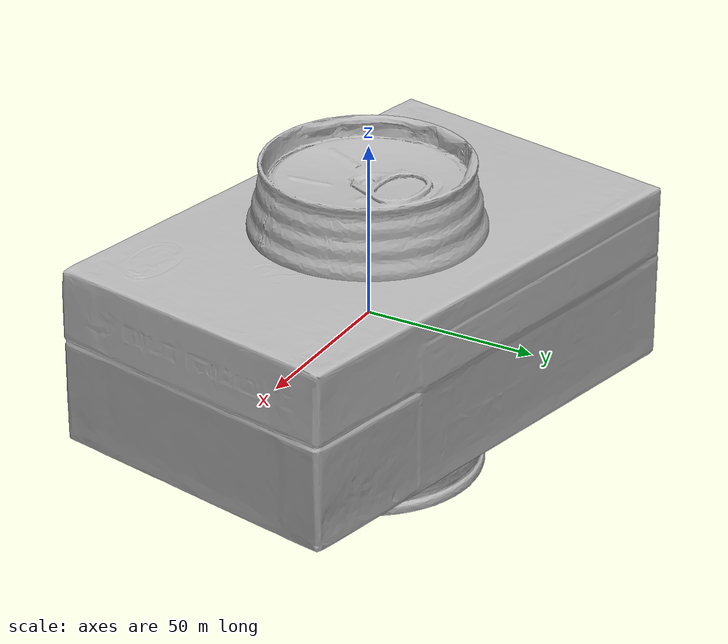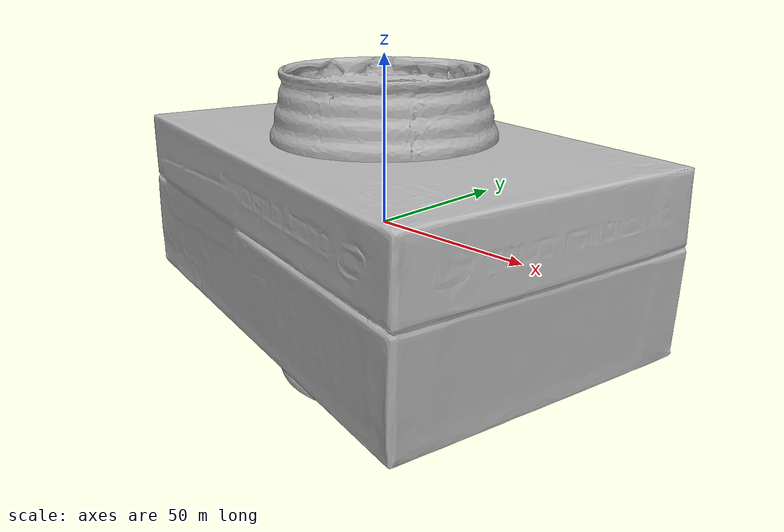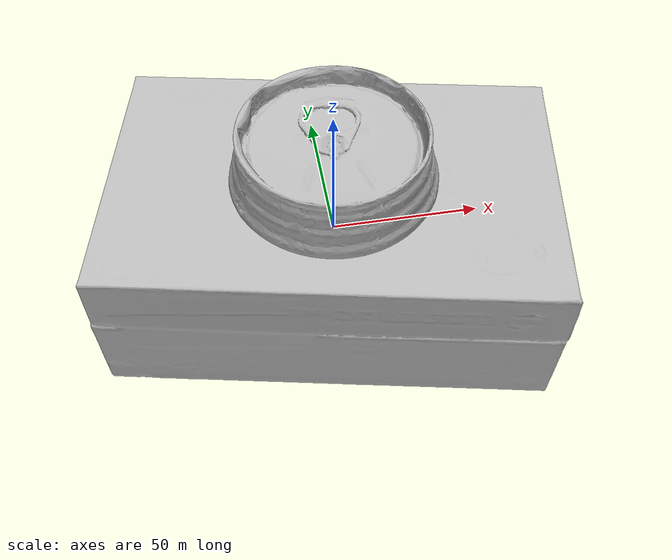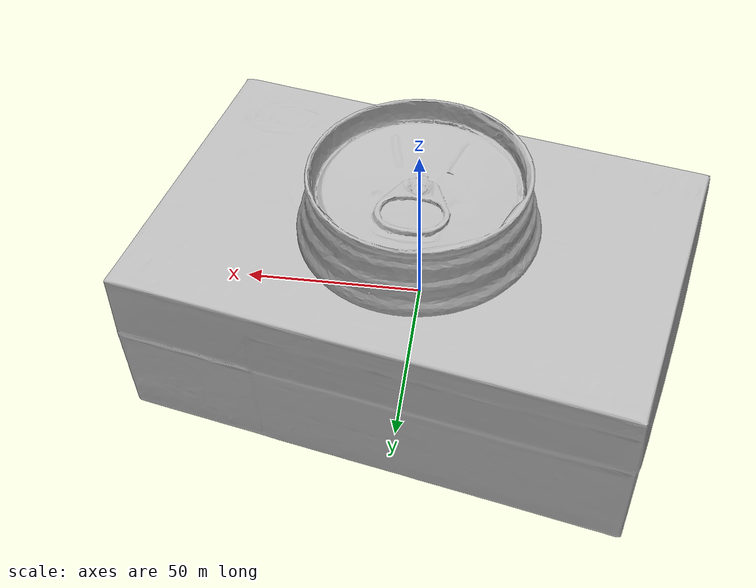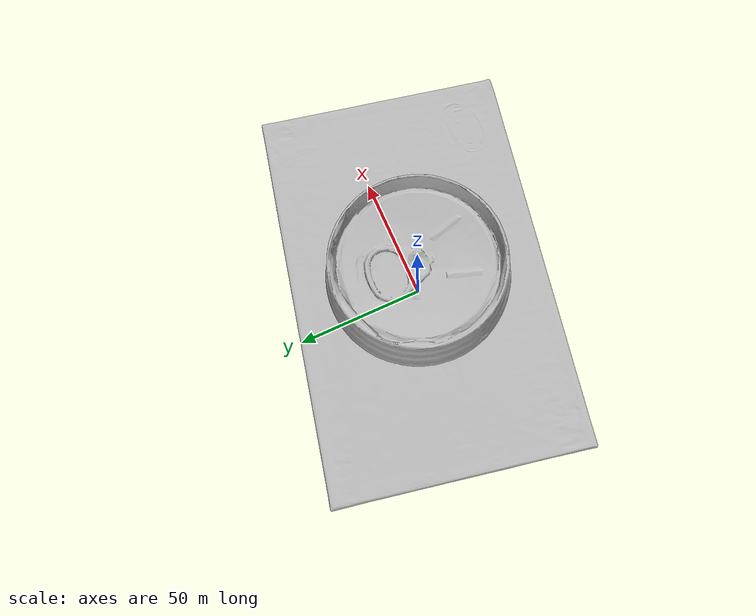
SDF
<sdf version="1.4">
 <world name="default">
  <light name="light1" type="point">
   <pose>0 0 1 0 0 0</pose>
   <diffuse>3 3 3 1</diffuse>
   <specular>3 3 3 1</specular>
  </light>
  <light name="light2" type="point">
   <pose>0 0.5 2 0 0 0</pose>
   <diffuse>1 1 1 1</diffuse>
   <specular>1 1 1 1</specular>
  </light>
  <light name="light3" type="point">
   <pose>0 0.5 2 0 0 0</pose>
   <diffuse>3 3 3 1</diffuse>
   <specular>3 3 3 1</specular>
  </light>
  <scene><ambient>0.7 0.7 0.7</ambient></scene>
  <model name="box1">
   <link name="link_box1">
    <collision name="default">
     <geometry>
      <mesh><uri>model://realsense_box/collision_meshes/collision.obj</uri><scale>1.0 1.0 1.0</scale></mesh>
     </geometry>
     <surface>
      <friction><ode><mu>0.5</mu><mu2>0.5</mu2></ode></friction>
      <contact><ode><max_vel>0</max_vel><min_depth>0.0001</min_depth><kp>1e8</kp></ode></contact>
     </surface>
    </collision>
    <visual name="default">
     <geometry>
      <mesh><uri>model://realsense_box/visual_meshes/visual.dae</uri><scale>1.0 1.0 1.0</scale></mesh>
     </geometry>
    </visual>
    <inertial>
     <mass>0.9783616662025452</mass>
     <pose>4.0744838770478964e-05 8.587493357481435e-05 -2.4153794583980925e-05 -0.00012602841694551038 -0.006358939977979225 0.005012324824875736</pose>
     <inertia>
      <ixx>0.0009306729</ixx>
      <iyy>0.0019425071</iyy>
      <izz>0.002403061</izz>
      <ixy>0</ixy>
      <ixz>0</ixz>
      <iyz>0</iyz>
     </inertia>
    </inertial>
   </link>
   <pose>0.04954634979367256 -0.20528051257133484 0.027316011488437653 -9.686077103142705e-08 -3.3469339023804444e-09 2.9282469899230743</pose>
  </model>
  <model name="box2">
   <link name="link_box2">
    <collision name="default">
     <geometry>
      <mesh><uri>model://wooden_puzzle2/collision_meshes/collision.obj</uri><scale>1.0 1.0 1.0</scale></mesh>
     </geometry>
     <surface>
      <friction><ode><mu>0.5</mu><mu2>0.5</mu2></ode></friction>
      <contact><ode><max_vel>0</max_vel><min_depth>0.0001</min_depth><kp>1e8</kp></ode></contact>
     </surface>
    </collision>
    <visual name="default">
     <geometry>
      <mesh><uri>model://wooden_puzzle2/visual_meshes/visual.dae</uri><scale>1.0 1.0 1.0</scale></mesh>
     </geometry>
    </visual>
    <inertial>
     <mass>0.024048319086432457</mass>
     <pose>2.7402536943554878e-05 4.997663199901581e-05 6.587122334167361e-05 -0.19203048535200862 0.6112800928970119 -0.6338660341545117</pose>
     <inertia>
      <ixx>4.470326e-06</ixx>
      <iyy>4.593511e-06</iyy>
      <izz>4.528165e-06</izz>
      <ixy>0</ixy>
      <ixz>0</ixz>
      <iyz>0</iyz>
     </inertia>
    </inertial>
   </link>
   <pose>0.2765333652496338 0.1771158128976822 0.01691773161292076 0.020848359702676057 0.0007215560176036638 2.3802882359486026</pose>
  </model>
  <model name="can1">
   <link name="link_can1">
    <collision name="default">
     <geometry>
      <mesh><uri>model://redbull/collision_meshes/collision.obj</uri><scale>1.0 1.0 1.0</scale></mesh>
     </geometry>
     <surface>
      <friction><ode><mu>0.5</mu><mu2>0.5</mu2></ode></friction>
      <contact><ode><max_vel>0</max_vel><min_depth>0.0001</min_depth><kp>1e8</kp></ode></contact>
     </surface>
    </collision>
    <visual name="default">
     <geometry>
      <mesh><uri>model://redbull/visual_meshes/visual.dae</uri><scale>1.0 1.0 1.0</scale></mesh>
     </geometry>
    </visual>
    <inertial>
     <mass>0.19214749336242676</mass>
     <pose>-2.212707477156073e-05 -0.00012659536150749773 -0.0006860988214612007 0.0011364686928787662 -0.01080099531045839 0.5859333437288349</pose>
     <inertia>
      <ixx>0.00018066002</ixx>
      <iyy>0.0001808125</iyy>
      <izz>0.0001072083</izz>
      <ixy>0</ixy>
      <ixz>0</ixz>
      <iyz>0</iyz>
     </inertia>
    </inertial>
   </link>
   <pose>-0.0666559487581253 -0.3667534589767456 0.046385638415813446 -0.010489435397443103 0.00726130312596376 -2.7964425456666824</pose>
  </model>
  <model name="can2">
   <link name="link_can2">
    <collision name="default">
     <geometry>
      <mesh><uri>model://pepsi/collision_meshes/collision.obj</uri><scale>1.0 1.0 1.0</scale></mesh>
     </geometry>
     <surface>
      <friction><ode><mu>0.5</mu><mu2>0.5</mu2></ode></friction>
      <contact><ode><max_vel>0</max_vel><min_depth>0.0001</min_depth><kp>1e8</kp></ode></contact>
     </surface>
    </collision>
    <visual name="default">
     <geometry><mesh><uri>model://pepsi/visual_meshes/visual.dae</uri><scale>1.0 1.0 1.0</scale></mesh></geometry>
    </visual>
    <inertial>
     <mass>0.3079187572002411</mass>
     <pose>-7.5590331107378e-05 2.9931279641459696e-05 -0.0003384356386959553 -0.0010678548810066889 -0.0021735327588889423 0.5674125845328797</pose>
     <inertia>
      <ixx>0.0006134332</ixx>
      <iyy>0.0006129863</iyy>
      <izz>0.0001305606</izz>
      <ixy>0</ixy>
      <ixz>0</ixz>
      <iyz>0</iyz>
     </inertia>
    </inertial>
   </link>
   <pose>0.2656494379043579 0.24506892263889313 0.0744963139295578 -1.8196819439618072e-05 2.046416117311497e-06 0.7042709107758164</pose>
  </model>
  <physics type="ode">
   <max_contacts>50</max_contacts>
   <ode>
    <solver><type>quick</type><iters>75</iters></solver>
    <constraints>
     <contact_max_correcting_vel>0</contact_max_correcting_vel>
     <contact_surface_layer>0</contact_surface_layer>
    </constraints>
   </ode>
  </physics>
 </world>
</sdf>
